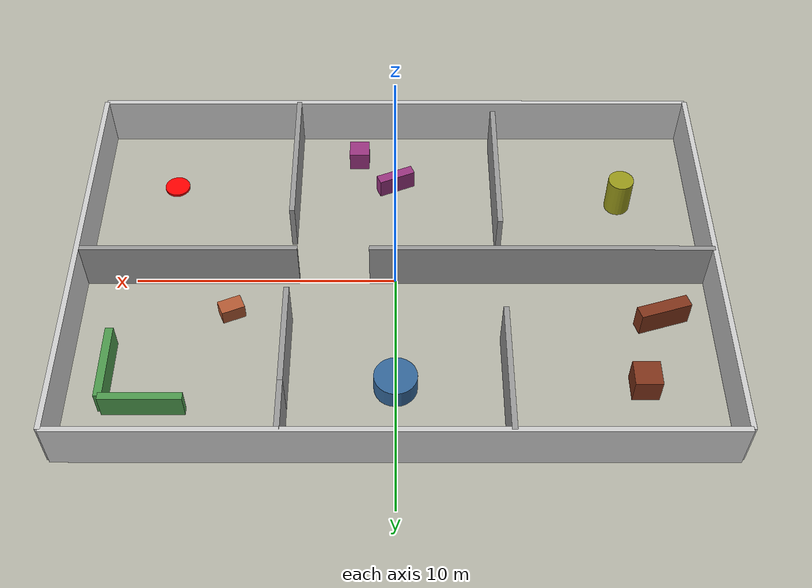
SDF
<sdf version="1.6">
 <world name="building_rooms">
  <physics name="default_physics" type="ode">
   <max_step_size>0.001</max_step_size>
   <real_time_factor>1</real_time_factor>
   <real_time_update_rate>1000</real_time_update_rate>
  </physics>
  <gravity>0 0 -9.8</gravity>
  <light name="sun" type="directional">
   <pose>0 0 15 0 0 0</pose>
   <diffuse>0.9 0.9 0.9 1</diffuse>
   <specular>0.3 0.3 0.3 1</specular>
   <direction>-0.5 0.1 -0.9</direction>
  </light>
  <model name="ground_plane">
   <static>true</static>
   <link name="link">
    <collision name="collision">
     <geometry><plane><normal>0 0 1</normal><size>40 30</size></plane></geometry>
    </collision>
    <visual name="visual">
     <geometry><plane><normal>0 0 1</normal><size>40 30</size></plane></geometry>
     <material><ambient>0.7 0.7 0.65 1</ambient><diffuse>0.7 0.7 0.65 1</diffuse></material>
    </visual>
   </link>
  </model>
  <model name="ext_north">
   <static>true</static>
   <pose>0 8 1 0 0 0</pose>
   <link name="link">
    <collision name="collision"><geometry><box><size>24 0.2 2</size></box></geometry></collision>
    <visual name="visual">
     <geometry><box><size>24 0.2 2</size></box></geometry>
     <material><ambient>0.8 0.8 0.8 1</ambient><diffuse>0.8 0.8 0.8 1</diffuse></material>
    </visual>
   </link>
  </model>
  <model name="ext_south">
   <static>true</static>
   <pose>0 -8 1 0 0 0</pose>
   <link name="link">
    <collision name="collision"><geometry><box><size>24 0.2 2</size></box></geometry></collision>
    <visual name="visual">
     <geometry><box><size>24 0.2 2</size></box></geometry>
     <material><ambient>0.8 0.8 0.8 1</ambient><diffuse>0.8 0.8 0.8 1</diffuse></material>
    </visual>
   </link>
  </model>
  <model name="ext_east">
   <static>true</static>
   <pose>12 0 1 0 0 0</pose>
   <link name="link">
    <collision name="collision"><geometry><box><size>0.2 16 2</size></box></geometry></collision>
    <visual name="visual">
     <geometry><box><size>0.2 16 2</size></box></geometry>
     <material><ambient>0.8 0.8 0.8 1</ambient><diffuse>0.8 0.8 0.8 1</diffuse></material>
    </visual>
   </link>
  </model>
  <model name="ext_west">
   <static>true</static>
   <pose>-12 0 1 0 0 0</pose>
   <link name="link">
    <collision name="collision"><geometry><box><size>0.2 16 2</size></box></geometry></collision>
    <visual name="visual">
     <geometry><box><size>0.2 16 2</size></box></geometry>
     <material><ambient>0.8 0.8 0.8 1</ambient><diffuse>0.8 0.8 0.8 1</diffuse></material>
    </visual>
   </link>
  </model>
  <model name="int_h_west">
   <static>true</static>
   <pose>-5.5 0 1 0 0 0</pose>
   <link name="link">
    <collision name="collision"><geometry><box><size>13 0.2 2</size></box></geometry></collision>
    <visual name="visual">
     <geometry><box><size>13 0.2 2</size></box></geometry>
     <material><ambient>0.6 0.6 0.6 1</ambient><diffuse>0.6 0.6 0.6 1</diffuse></material>
    </visual>
   </link>
  </model>
  <model name="int_h_east">
   <static>true</static>
   <pose>7.85 0 1 0 0 0</pose>
   <link name="link">
    <collision name="collision"><geometry><box><size>8.3 0.2 2</size></box></geometry></collision>
    <visual name="visual">
     <geometry><box><size>8.3 0.2 2</size></box></geometry>
     <material><ambient>0.6 0.6 0.6 1</ambient><diffuse>0.6 0.6 0.6 1</diffuse></material>
    </visual>
   </link>
  </model>
  <model name="int_v_left_n">
   <static>true</static>
   <pose>-4 5.4 1 0 0 0</pose>
   <link name="link">
    <collision name="collision"><geometry><box><size>0.2 5.2 2</size></box></geometry></collision>
    <visual name="visual">
     <geometry><box><size>0.2 5.2 2</size></box></geometry>
     <material><ambient>0.6 0.6 0.6 1</ambient><diffuse>0.6 0.6 0.6 1</diffuse></material>
    </visual>
   </link>
  </model>
  <model name="int_v_left_s">
   <static>true</static>
   <pose>-4 -4.4 1 0 0 0</pose>
   <link name="link">
    <collision name="collision"><geometry><box><size>0.2 6.1 2</size></box></geometry></collision>
    <visual name="visual">
     <geometry><box><size>0.2 6.1 2</size></box></geometry>
     <material><ambient>0.6 0.6 0.6 1</ambient><diffuse>0.6 0.6 0.6 1</diffuse></material>
    </visual>
   </link>
  </model>
  <model name="int_v_right_n">
   <static>true</static>
   <pose>4 7 1 0 0 0</pose>
   <link name="link">
    <collision name="collision"><geometry><box><size>0.2 2 2</size></box></geometry></collision>
    <visual name="visual">
     <geometry><box><size>0.2 2 2</size></box></geometry>
     <material><ambient>0.6 0.6 0.6 1</ambient><diffuse>0.6 0.6 0.6 1</diffuse></material>
    </visual>
   </link>
  </model>
  <model name="int_v_right_ns">
   <static>true</static>
   <pose>4 4.45 1 0 0 0</pose>
   <link name="link">
    <collision name="collision"><geometry><box><size>0.2 5.1 2</size></box></geometry></collision>
    <visual name="visual">
     <geometry><box><size>0.2 5.1 2</size></box></geometry>
     <material><ambient>0.6 0.6 0.6 1</ambient><diffuse>0.6 0.6 0.6 1</diffuse></material>
    </visual>
   </link>
  </model>
  <model name="int_v_right_s">
   <static>true</static>
   <pose>4 -4.95 1 0 0 0</pose>
   <link name="link">
    <collision name="collision"><geometry><box><size>0.2 6.1 2</size></box></geometry></collision>
    <visual name="visual">
     <geometry><box><size>0.2 6.1 2</size></box></geometry>
     <material><ambient>0.6 0.6 0.6 1</ambient><diffuse>0.6 0.6 0.6 1</diffuse></material>
    </visual>
   </link>
  </model>
  <model name="hab1_box1">
   <static>true</static>
   <pose>-9 5 0.5 0 0 0</pose>
   <link name="link">
    <collision name="collision"><geometry><box><size>1 1 1</size></box></geometry></collision>
    <visual name="visual">
     <geometry><box><size>1 1 1</size></box></geometry>
     <material><ambient>0.5 0.2 0.1 1</ambient><diffuse>0.5 0.2 0.1 1</diffuse></material>
    </visual>
   </link>
  </model>
  <model name="hab1_box2">
   <static>true</static>
   <pose>-10 2 0.5 0 0 0.3</pose>
   <link name="link">
    <collision name="collision"><geometry><box><size>2 0.5 1</size></box></geometry></collision>
    <visual name="visual">
     <geometry><box><size>2 0.5 1</size></box></geometry>
     <material><ambient>0.5 0.2 0.1 1</ambient><diffuse>0.5 0.2 0.1 1</diffuse></material>
    </visual>
   </link>
  </model>
  <model name="hab2_table">
   <static>true</static>
   <pose>0 5 0.4 0 0 0</pose>
   <link name="link">
    <collision name="collision">
     <geometry><cylinder><radius>0.8</radius><length>0.8</length></cylinder></geometry>
    </collision>
    <visual name="visual">
     <geometry><cylinder><radius>0.8</radius><length>0.8</length></cylinder></geometry>
     <material><ambient>0.2 0.4 0.6 1</ambient><diffuse>0.2 0.4 0.6 1</diffuse></material>
    </visual>
   </link>
  </model>
  <model name="hab3_lwall1">
   <static>true</static>
   <pose>9 6 0.5 0 0 0</pose>
   <link name="link">
    <collision name="collision"><geometry><box><size>3 0.3 1</size></box></geometry></collision>
    <visual name="visual">
     <geometry><box><size>3 0.3 1</size></box></geometry>
     <material><ambient>0.3 0.6 0.3 1</ambient><diffuse>0.3 0.6 0.3 1</diffuse></material>
    </visual>
   </link>
  </model>
  <model name="hab3_lwall2">
   <static>true</static>
   <pose>10.5 4.5 0.5 0 0 0</pose>
   <link name="link">
    <collision name="collision"><geometry><box><size>0.3 3 1</size></box></geometry></collision>
    <visual name="visual">
     <geometry><box><size>0.3 3 1</size></box></geometry>
     <material><ambient>0.3 0.6 0.3 1</ambient><diffuse>0.3 0.6 0.3 1</diffuse></material>
    </visual>
   </link>
  </model>
  <model name="hab4_pillar">
   <static>true</static>
   <pose>-9 -4 0.75 0 0 0</pose>
   <link name="link">
    <collision name="collision">
     <geometry><cylinder><radius>0.5</radius><length>1.5</length></cylinder></geometry>
    </collision>
    <visual name="visual">
     <geometry><cylinder><radius>0.5</radius><length>1.5</length></cylinder></geometry>
     <material><ambient>0.6 0.6 0.1 1</ambient><diffuse>0.6 0.6 0.1 1</diffuse></material>
    </visual>
   </link>
  </model>
  <model name="hab5_obj1">
   <static>true</static>
   <pose>0 -5 0.4 0 0 0.4</pose>
   <link name="link">
    <collision name="collision"><geometry><box><size>1.5 0.4 0.8</size></box></geometry></collision>
    <visual name="visual">
     <geometry><box><size>1.5 0.4 0.8</size></box></geometry>
     <material><ambient>0.6 0.2 0.5 1</ambient><diffuse>0.6 0.2 0.5 1</diffuse></material>
    </visual>
   </link>
  </model>
  <model name="hab5_obj2">
   <static>true</static>
   <pose>1.5 -6.5 0.4 0 0 0</pose>
   <link name="link">
    <collision name="collision"><geometry><box><size>0.8 0.8 0.8</size></box></geometry></collision>
    <visual name="visual">
     <geometry><box><size>0.8 0.8 0.8</size></box></geometry>
     <material><ambient>0.6 0.2 0.5 1</ambient><diffuse>0.6 0.2 0.5 1</diffuse></material>
    </visual>
   </link>
  </model>
  <model name="hab6_target">
   <static>true</static>
   <pose>9 -5 0.05 0 0 0</pose>
   <link name="link">
    <collision name="collision">
     <geometry><cylinder><radius>0.5</radius><length>0.1</length></cylinder></geometry>
    </collision>
    <visual name="visual">
     <geometry><cylinder><radius>0.5</radius><length>0.1</length></cylinder></geometry>
     <material><ambient>1 0 0 1</ambient><diffuse>1 0 0 1</diffuse></material>
    </visual>
   </link>
  </model>
  <model name="r3_debris">
   <static>true</static>
   <pose>6.2 1.6 0.3 0 0 0.4</pose>
   <link name="link">
    <collision name="collision"><geometry><box><size>0.9 0.6 0.6</size></box></geometry></collision>
    <visual name="visual">
     <geometry><box><size>0.9 0.6 0.6</size></box></geometry>
     <material><ambient>0.7 0.35 0.2 1</ambient><diffuse>0.7 0.35 0.2 1</diffuse></material>
    </visual>
   </link>
  </model>
  <plugin name="gazebo_ros_state" filename="libgazebo_ros_state.so">
   <ros><namespace>/gazebo</namespace></ros>
   <update_rate>10.0</update_rate>
  </plugin>
 </world>
</sdf>
